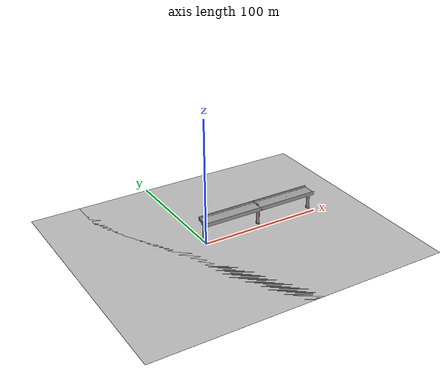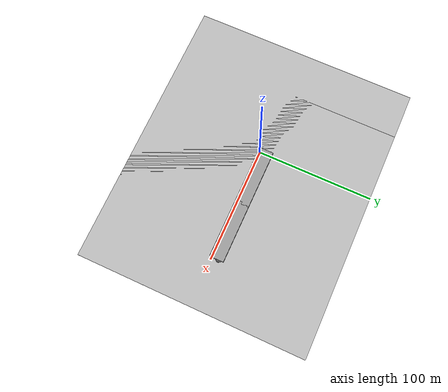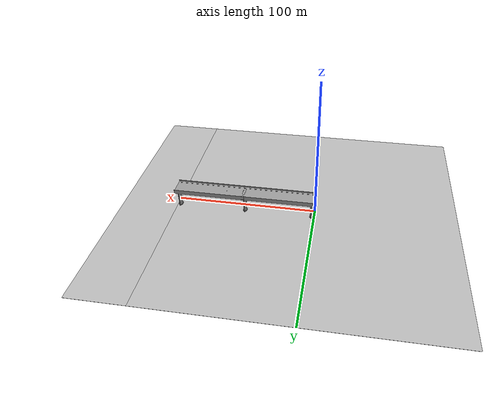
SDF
<sdf version="1.6">
 <world name="default">
  <include><uri>model://sun</uri></include>
  <include><uri>model://concrete_plane</uri></include>
  <include><uri>model://concrete_plane</uri><pose>40 0 0 0 0 0</pose></include>
  <include><uri>model://deungsun_bridge</uri><pose>0 30 0 1.570796 0 0</pose></include>
  <include><uri>model://deungsun_bridge</uri><pose>48 30 0 1.570796 0 0</pose></include>
  <physics name="default_physics" default="0" type="ode">
   <gravity>0 0 -9.8066</gravity>
   <ode>
    <solver>
     <type>quick</type>
     <iters>10</iters>
     <sor>1.3</sor>
     <use_dynamic_moi_rescaling>0</use_dynamic_moi_rescaling>
    </solver>
    <constraints>
     <cfm>0</cfm>
     <erp>0.2</erp>
     <contact_max_correcting_vel>100</contact_max_correcting_vel>
     <contact_surface_layer>0.001</contact_surface_layer>
    </constraints>
   </ode>
   <max_step_size>0.004</max_step_size>
   <real_time_factor>1</real_time_factor>
   <real_time_update_rate>250</real_time_update_rate>
   <magnetic_field>6.0e-6 2.3e-5 -4.2e-5</magnetic_field>
  </physics>
 </world>
</sdf>

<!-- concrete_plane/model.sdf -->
<sdf version="1.5">
  <model name="concrete_plane">
    <static>true</static>
    <link name="link">
      <collision name="collision">
        <geometry>
          <box>
            <size>200 200 .1</size>
          </box>
        </geometry>
      </collision>
      <visual name="visual">
        <cast_shadows>false</cast_shadows>
        <geometry>
          <box>
            <size>200 200 .1</size>
          </box>
        </geometry>
        <material>
          <script>
            <uri>model://concrete_plane/materials/scripts</uri>
            <uri>model://concrete_plane/materials/textures</uri>
            <name>vrc/concrete</name>
          </script>
        </material>
      </visual>
    </link>
  </model>
</sdf>

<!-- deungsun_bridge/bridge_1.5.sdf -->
<sdf version='1.5'>
	<model name='deungsun_bridge'>

		<static>true</static>

		<link name='link'>
				<visual name='visual'>
				<geometry>
					<mesh>
						<uri>model://deungsun_bridge/meshes/deungsun_bridge_simple.dae</uri>
					</mesh>
				</geometry>
				<material>
					<script>
						<uri>model://deungsun_bridge/materials/scripts</uri>
						<uri>model://deungsun_bridge/materials/textures</uri>
						<name>vrc/concrete</name>
					</script>
				</material>
			</visual>
			<collision name='collision'>
				<geometry>
					<mesh>
						<uri>model://deungsun_bridge/meshes/deungsun_bridge_simple.dae</uri>
					</mesh>
				</geometry>
				<material>
					<script>
						<uri>model://deungsun_bridge/materials/scripts</uri>
						<uri>model://deungsun_bridge/materials/textures</uri>
						<name>vrc/concrete</name>
					</script>
				</material>
			</collision>
		</link>

	</model>
</sdf>
